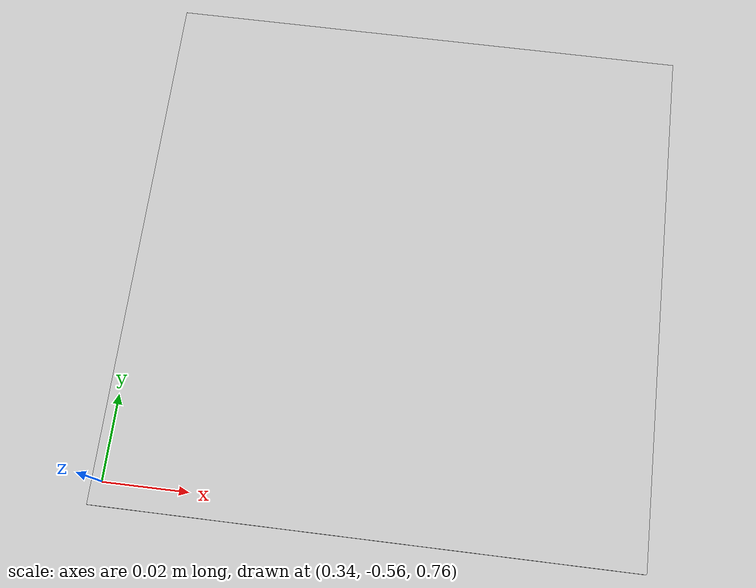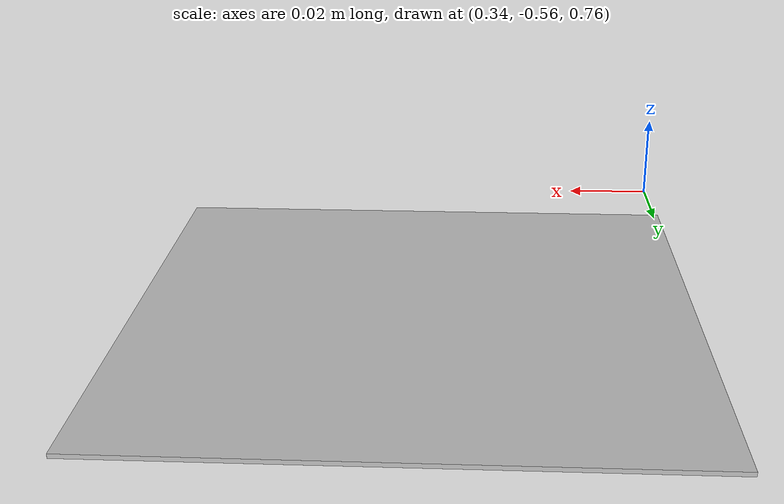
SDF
<?xml version="1.0" ?>
<sdf version="1.4">
	<world name="default">
 		<include>
 			<uri>model://ground_plane</uri>
 		</include>
 		<include>
 			<uri>model://sun</uri>
 		</include>
 		<include>
 			<uri>model://tag_01</uri>
			<pose>0.4 -0.5 0.751 0 0 0</pose>
 		</include>
 </world>
</sdf>

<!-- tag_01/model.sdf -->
<sdf version="1.4">
  <model name="tag_01">
    <pose>0 0 0 0 0 0</pose>
		<static>true</static>
    <link name="link">
      <inertial>
        <mass>0.005</mass>
        <inertia>
          <ixx>1.0</ixx>
          <ixy>0</ixy>
          <ixz>0</ixz>
          <iyy>1.0</iyy>
          <iyz>0</iyz>
          <izz>1.0</izz>
        </inertia>
      </inertial>
      <collision name="collision">
        <geometry>
          <box>
            <size>0.13 0.13 0.001</size>
          </box>
        </geometry>
      </collision>
      <visual name="pattern">
        <pose> 0 0 0 0 0 0 </pose>
        <geometry>
          <box>
            <size>0.13 0.13 0.001</size>
          </box>
        </geometry>
        <material>
          <script>
            <uri>model://materials/scripts</uri>
            <uri>model://materials/textures</uri>
            <name>tag/tag_01</name>
          </script>
        </material>
      </visual>
    </link>
  </model>
</sdf>
